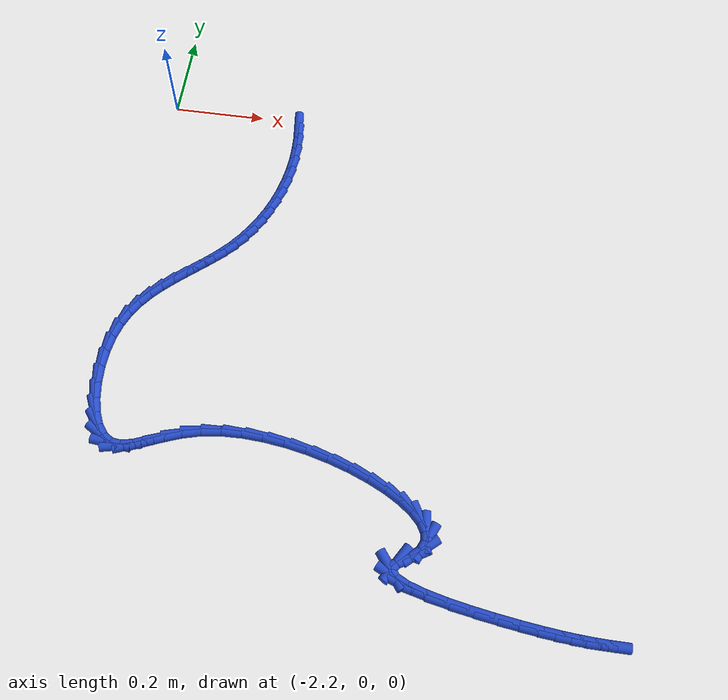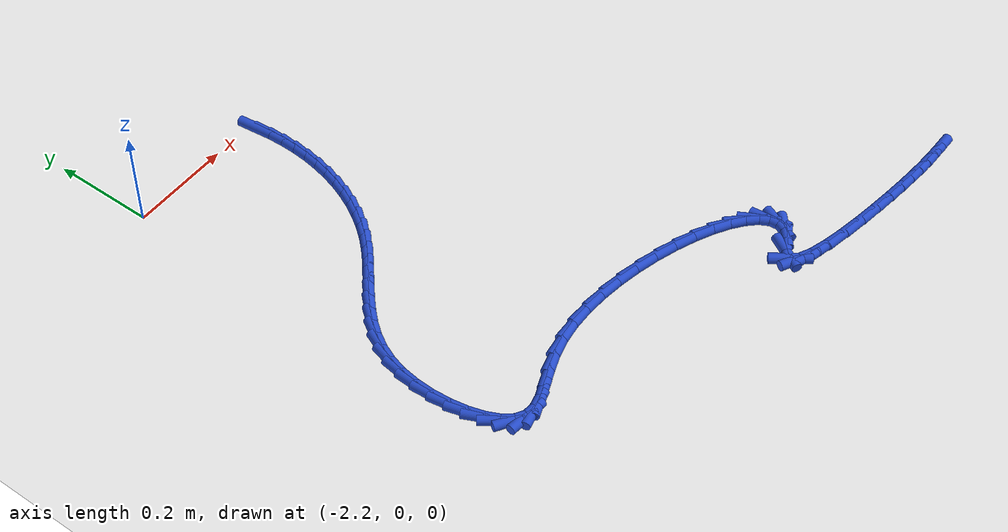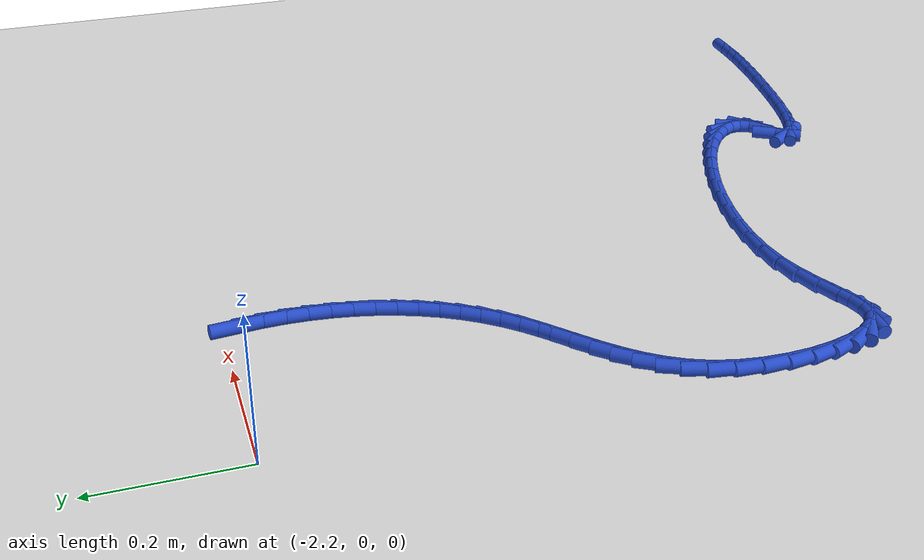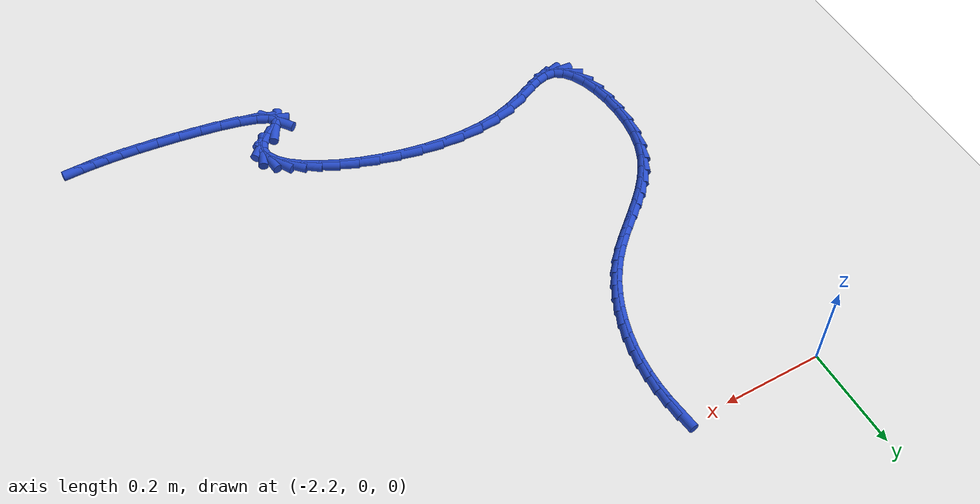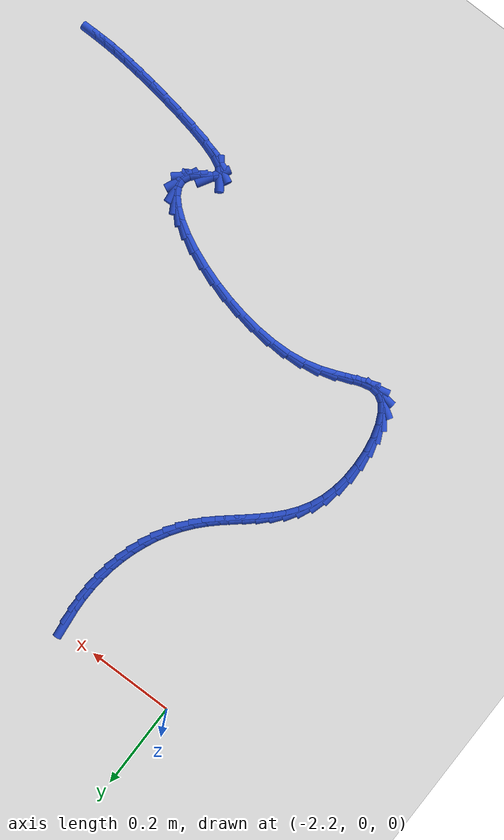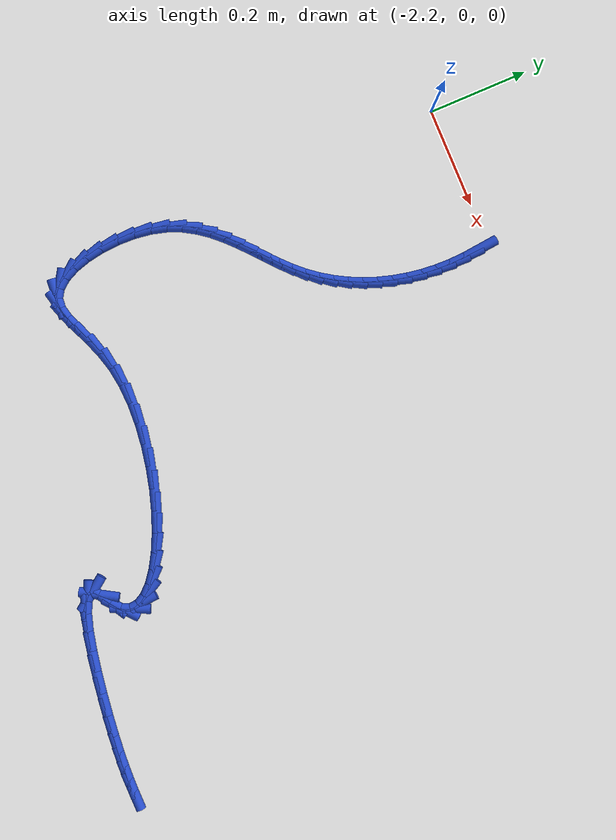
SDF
<sdf version="1.6">
 <world name="default">
  <model name="ground_plane">
   <static>1</static>
   <link name="link">
    <collision name="collision">
     <geometry><plane><normal>0 0 1</normal><size>100 100</size></plane></geometry>
     <surface><friction><ode><mu>100</mu><mu2>50</mu2></ode></friction></surface>
    </collision>
    <visual name="visual">
     <cast_shadows>0</cast_shadows>
     <geometry><plane><normal>0 0 1</normal><size>100 100</size></plane></geometry>
     <material>
      <script><uri>file://media/materials/scripts/gazebo.material</uri><name>Gazebo/WhiteGlow</name></script>
     </material>
    </visual>
   </link>
  </model>
  <model name="line">
   <link name="link_135">
    <pose>-1.9121766928476438 -0.02243736387028973 0.01 0 1.57 -1.4677591055402124</pose>
    <collision name="collision">
     <geometry><cylinder><radius>0.01</radius><length>0.08</length></cylinder></geometry>
    </collision>
    <visual name="visual">
     <material>
      <script><name>Gazebo/Blue</name><uri>file://media/materials/scripts/gazebo.material</uri></script>
     </material>
     <geometry><cylinder><radius>0.01</radius><length>0.08</length></cylinder></geometry>
    </visual>
   </link>
   <link name="link_136">
    <pose>-1.908968319430441 -0.05346509593135948 0.01 0 1.57 -1.5336050951854225</pose>
    <collision name="collision">
     <geometry><cylinder><radius>0.01</radius><length>0.08</length></cylinder></geometry>
    </collision>
    <visual name="visual">
     <material>
      <script><name>Gazebo/Blue</name><uri>file://media/materials/scripts/gazebo.material</uri></script>
     </material>
     <geometry><cylinder><radius>0.01</radius><length>0.08</length></cylinder></geometry>
    </visual>
   </link>
   <link name="link_137">
    <pose>-1.9078209519683493 -0.08430135371265923 0.01 0 1.57 1.5419096473632903</pose>
    <collision name="collision">
     <geometry><cylinder><radius>0.01</radius><length>0.08</length></cylinder></geometry>
    </collision>
    <visual name="visual">
     <material>
      <script><name>Gazebo/Blue</name><uri>file://media/materials/scripts/gazebo.material</uri></script>
     </material>
     <geometry><cylinder><radius>0.01</radius><length>0.08</length></cylinder></geometry>
    </visual>
   </link>
   <link name="link_138">
    <pose>-1.9087029506675008 -0.11482591997579036 0.01 0 1.57 1.4753915720247472</pose>
    <collision name="collision">
     <geometry><cylinder><radius>0.01</radius><length>0.08</length></cylinder></geometry>
    </collision>
    <visual name="visual">
     <material>
      <script><name>Gazebo/Blue</name><uri>file://media/materials/scripts/gazebo.material</uri></script>
     </material>
     <geometry><cylinder><radius>0.01</radius><length>0.08</length></cylinder></geometry>
    </visual>
   </link>
   <link name="link_139">
    <pose>-1.9115826757340275 -0.14491857748235043 0.01 0 1.57 1.4082049738448952</pose>
    <collision name="collision">
     <geometry><cylinder><radius>0.01</radius><length>0.08</length></cylinder></geometry>
    </collision>
    <visual name="visual">
     <material>
      <script><name>Gazebo/Blue</name><uri>file://media/materials/scripts/gazebo.material</uri></script>
     </material>
     <geometry><cylinder><radius>0.01</radius><length>0.08</length></cylinder></geometry>
    </visual>
   </link>
   <link name="link_140">
    <pose>-1.916428487374062 -0.1744591089939399 0.01 0 1.57 1.3401079919401704</pose>
    <collision name="collision">
     <geometry><cylinder><radius>0.01</radius><length>0.08</length></cylinder></geometry>
    </collision>
    <visual name="visual">
     <material>
      <script><name>Gazebo/Blue</name><uri>file://media/materials/scripts/gazebo.material</uri></script>
     </material>
     <geometry><cylinder><radius>0.01</radius><length>0.08</length></cylinder></geometry>
    </visual>
   </link>
   <link name="link_141">
    <pose>-1.9232087457937372 -0.20332729727215915 0.01 0 1.57 1.2708530210110442</pose>
    <collision name="collision">
     <geometry><cylinder><radius>0.01</radius><length>0.08</length></cylinder></geometry>
    </collision>
    <visual name="visual">
     <material>
      <script><name>Gazebo/Blue</name><uri>file://media/materials/scripts/gazebo.material</uri></script>
     </material>
     <geometry><cylinder><radius>0.01</radius><length>0.08</length></cylinder></geometry>
    </visual>
   </link>
   <link name="link_142">
    <pose>-1.9318918111991847 -0.23140292507860588 0.01 0 1.57 1.200196012994021</pose>
    <collision name="collision">
     <geometry><cylinder><radius>0.01</radius><length>0.08</length></cylinder></geometry>
    </collision>
    <visual name="visual">
     <material>
      <script><name>Gazebo/Blue</name><uri>file://media/materials/scripts/gazebo.material</uri></script>
     </material>
     <geometry><cylinder><radius>0.01</radius><length>0.08</length></cylinder></geometry>
    </visual>
   </link>
   <link name="link_143">
    <pose>-1.942446043796537 -0.2585657751748812 0.01 0 1.57 1.127907732350602</pose>
    <collision name="collision">
     <geometry><cylinder><radius>0.01</radius><length>0.08</length></cylinder></geometry>
    </collision>
    <visual name="visual">
     <material>
      <script><name>Gazebo/Blue</name><uri>file://media/materials/scripts/gazebo.material</uri></script>
     </material>
     <geometry><cylinder><radius>0.01</radius><length>0.08</length></cylinder></geometry>
    </visual>
   </link>
   <link name="link_144">
    <pose>-1.9548398037919263 -0.28469563032258305 0.01 0 1.57 1.0537872842390406</pose>
    <collision name="collision">
     <geometry><cylinder><radius>0.01</radius><length>0.08</length></cylinder></geometry>
    </collision>
    <visual name="visual">
     <material>
      <script><name>Gazebo/Blue</name><uri>file://media/materials/scripts/gazebo.material</uri></script>
     </material>
     <geometry><cylinder><radius>0.01</radius><length>0.08</length></cylinder></geometry>
    </visual>
   </link>
   <link name="link_145">
    <pose>-1.9690414513914853 -0.3096722732833125 0.01 0 1.57 0.9776779967423525</pose>
    <collision name="collision">
     <geometry><cylinder><radius>0.01</radius><length>0.08</length></cylinder></geometry>
    </collision>
    <visual name="visual">
     <material>
      <script><name>Gazebo/Blue</name><uri>file://media/materials/scripts/gazebo.material</uri></script>
     </material>
     <geometry><cylinder><radius>0.01</radius><length>0.08</length></cylinder></geometry>
    </visual>
   </link>
   <link name="link_146">
    <pose>-1.9850193468013462 -0.33337548681866735 0.01 0 1.57 0.8994853082831057</pose>
    <collision name="collision">
     <geometry><cylinder><radius>0.01</radius><length>0.08</length></cylinder></geometry>
    </collision>
    <visual name="visual">
     <material>
      <script><name>Gazebo/Blue</name><uri>file://media/materials/scripts/gazebo.material</uri></script>
     </material>
     <geometry><cylinder><radius>0.01</radius><length>0.08</length></cylinder></geometry>
    </visual>
   </link>
   <link name="link_147">
    <pose>-2.002741850227641 -0.3556850536902486 0.01 0 1.57 0.8207061070799493</pose>
    <collision name="collision">
     <geometry><cylinder><radius>0.01</radius><length>0.08</length></cylinder></geometry>
    </collision>
    <visual name="visual">
     <material>
      <script><name>Gazebo/Blue</name><uri>file://media/materials/scripts/gazebo.material</uri></script>
     </material>
     <geometry><cylinder><radius>0.01</radius><length>0.08</length></cylinder></geometry>
    </visual>
   </link>
   <link name="link_148">
    <pose>-2.022149826203974 -0.3765143144184763 0.01 0 1.57 0.7577830455100565</pose>
    <collision name="collision">
     <geometry><cylinder><radius>0.01</radius><length>0.08</length></cylinder></geometry>
    </collision>
    <visual name="visual">
     <material>
      <script><name>Gazebo/Blue</name><uri>file://media/materials/scripts/gazebo.material</uri></script>
     </material>
     <geometry><cylinder><radius>0.01</radius><length>0.08</length></cylinder></geometry>
    </visual>
   </link>
   <link name="link_149">
    <pose>-2.042888194766551 -0.3961378021462796 0.01 0 1.57 0.7206810507390391</pose>
    <collision name="collision">
     <geometry><cylinder><radius>0.01</radius><length>0.08</length></cylinder></geometry>
    </collision>
    <visual name="visual">
     <material>
      <script><name>Gazebo/Blue</name><uri>file://media/materials/scripts/gazebo.material</uri></script>
     </material>
     <geometry><cylinder><radius>0.01</radius><length>0.08</length></cylinder></geometry>
    </visual>
   </link>
   <link name="link_150">
    <pose>-2.06442162352474 -0.41505004345229685 0.01 0 1.57 0.7091812823771667</pose>
    <collision name="collision">
     <geometry><cylinder><radius>0.01</radius><length>0.08</length></cylinder></geometry>
    </collision>
    <visual name="visual">
     <material>
      <script><name>Gazebo/Blue</name><uri>file://media/materials/scripts/gazebo.material</uri></script>
     </material>
     <geometry><cylinder><radius>0.01</radius><length>0.08</length></cylinder></geometry>
    </visual>
   </link>
   <link name="link_151">
    <pose>-2.0862122211930263 -0.4337486879803442 0.01 0 1.57 0.7230681073417091</pose>
    <collision name="collision">
     <geometry><cylinder><radius>0.01</radius><length>0.08</length></cylinder></geometry>
    </collision>
    <visual name="visual">
     <material>
      <script><name>Gazebo/Blue</name><uri>file://media/materials/scripts/gazebo.material</uri></script>
     </material>
     <geometry><cylinder><radius>0.01</radius><length>0.08</length></cylinder></geometry>
    </visual>
   </link>
   <link name="link_152">
    <pose>-2.107722096485896 -0.45273138537423846 0.01 0 1.57 0.7624916139472809</pose>
    <collision name="collision">
     <geometry><cylinder><radius>0.01</radius><length>0.08</length></cylinder></geometry>
    </collision>
    <visual name="visual">
     <material>
      <script><name>Gazebo/Blue</name><uri>file://media/materials/scripts/gazebo.material</uri></script>
     </material>
     <geometry><cylinder><radius>0.01</radius><length>0.08</length></cylinder></geometry>
    </visual>
   </link>
   <link name="link_153">
    <pose>-2.128413358117833 -0.472495785277794 0.01 0 1.57 0.8276972984747621</pose>
    <collision name="collision">
     <geometry><cylinder><radius>0.01</radius><length>0.08</length></cylinder></geometry>
    </collision>
    <visual name="visual">
     <material>
      <script><name>Gazebo/Blue</name><uri>file://media/materials/scripts/gazebo.material</uri></script>
     </material>
     <geometry><cylinder><radius>0.01</radius><length>0.08</length></cylinder></geometry>
    </visual>
   </link>
   <link name="link_154">
    <pose>-2.1477481148033215 -0.49353953733482775 0.01 0 1.57 0.9182485066810369</pose>
    <collision name="collision">
     <geometry><cylinder><radius>0.01</radius><length>0.08</length></cylinder></geometry>
    </collision>
    <visual name="visual">
     <material>
      <script><name>Gazebo/Blue</name><uri>file://media/materials/scripts/gazebo.material</uri></script>
     </material>
     <geometry><cylinder><radius>0.01</radius><length>0.08</length></cylinder></geometry>
    </visual>
   </link>
   <link name="link_155">
    <pose>-2.1651884752568478 -0.5163602911891544 0.01 0 1.57 1.0318187575510687</pose>
    <collision name="collision">
     <geometry><cylinder><radius>0.01</radius><length>0.08</length></cylinder></geometry>
    </collision>
    <visual name="visual">
     <material>
      <script><name>Gazebo/Blue</name><uri>file://media/materials/scripts/gazebo.material</uri></script>
     </material>
     <geometry><cylinder><radius>0.01</radius><length>0.08</length></cylinder></geometry>
    </visual>
   </link>
   <link name="link_156">
    <pose>-2.1801965481928964 -0.5414556964845908 0.01 0 1.57 1.1630404686378453</pose>
    <collision name="collision">
     <geometry><cylinder><radius>0.01</radius><length>0.08</length></cylinder></geometry>
    </collision>
    <visual name="visual">
     <material>
      <script><name>Gazebo/Blue</name><uri>file://media/materials/scripts/gazebo.material</uri></script>
     </material>
     <geometry><cylinder><radius>0.01</radius><length>0.08</length></cylinder></geometry>
    </visual>
   </link>
   <link name="link_157">
    <pose>-2.192234442325952 -0.5693234028649515 0.01 0 1.57 1.302886956119486</pose>
    <collision name="collision">
     <geometry><cylinder><radius>0.01</radius><length>0.08</length></cylinder></geometry>
    </collision>
    <visual name="visual">
     <material>
      <script><name>Gazebo/Blue</name><uri>file://media/materials/scripts/gazebo.material</uri></script>
     </material>
     <geometry><cylinder><radius>0.01</radius><length>0.08</length></cylinder></geometry>
    </visual>
   </link>
   <link name="link_158">
    <pose>-2.2007739680605405 -0.6004318033529518 0.01 0 1.57 1.4298449578536887</pose>
    <collision name="collision">
     <geometry><cylinder><radius>0.01</radius><length>0.08</length></cylinder></geometry>
    </collision>
    <visual name="visual">
     <material>
      <script><name>Gazebo/Blue</name><uri>file://media/materials/scripts/gazebo.material</uri></script>
     </material>
     <geometry><cylinder><radius>0.01</radius><length>0.08</length></cylinder></geometry>
    </visual>
   </link>
   <link name="link_159">
    <pose>-2.205586233516081 -0.6343467224698516 0.01 0 1.57 1.5366091471734635</pose>
    <collision name="collision">
     <geometry><cylinder><radius>0.01</radius><length>0.08</length></cylinder></geometry>
    </collision>
    <visual name="visual">
     <material>
      <script><name>Gazebo/Blue</name><uri>file://media/materials/scripts/gazebo.material</uri></script>
     </material>
     <geometry><cylinder><radius>0.01</radius><length>0.08</length></cylinder></geometry>
    </visual>
   </link>
   <link name="link_160">
    <pose>-2.2067912878967055 -0.6695817106424367 0.01 0 1.57 -1.5062629188563919</pose>
    <collision name="collision">
     <geometry><cylinder><radius>0.01</radius><length>0.08</length></cylinder></geometry>
    </collision>
    <visual name="visual">
     <material>
      <script><name>Gazebo/Blue</name><uri>file://media/materials/scripts/gazebo.material</uri></script>
     </material>
     <geometry><cylinder><radius>0.01</radius><length>0.08</length></cylinder></geometry>
    </visual>
   </link>
   <link name="link_161">
    <pose>-2.204528884129633 -0.7045908993345703 0.01 0 1.57 -1.4041690615488103</pose>
    <collision name="collision">
     <geometry><cylinder><radius>0.01</radius><length>0.08</length></cylinder></geometry>
    </collision>
    <visual name="visual">
     <material>
      <script><name>Gazebo/Blue</name><uri>file://media/materials/scripts/gazebo.material</uri></script>
     </material>
     <geometry><cylinder><radius>0.01</radius><length>0.08</length></cylinder></geometry>
    </visual>
   </link>
   <link name="link_162">
    <pose>-2.1989387751420852 -0.7378284200101126 0.01 0 1.57 -1.2854197421155935</pose>
    <collision name="collision">
     <geometry><cylinder><radius>0.01</radius><length>0.08</length></cylinder></geometry>
    </collision>
    <visual name="visual">
     <material>
      <script><name>Gazebo/Blue</name><uri>file://media/materials/scripts/gazebo.material</uri></script>
     </material>
     <geometry><cylinder><radius>0.01</radius><length>0.08</length></cylinder></geometry>
    </visual>
   </link>
   <link name="link_163">
    <pose>-2.1901607138612835 -0.7677484041329281 0.01 0 1.57 -1.129813078426051</pose>
    <collision name="collision">
     <geometry><cylinder><radius>0.01</radius><length>0.08</length></cylinder></geometry>
    </collision>
    <visual name="visual">
     <material>
      <script><name>Gazebo/Blue</name><uri>file://media/materials/scripts/gazebo.material</uri></script>
     </material>
     <geometry><cylinder><radius>0.01</radius><length>0.08</length></cylinder></geometry>
    </visual>
   </link>
   <link name="link_164">
    <pose>-2.17833445321445 -0.7928049831668773 0.01 0 1.57 -0.9020726214211754</pose>
    <collision name="collision">
     <geometry><cylinder><radius>0.01</radius><length>0.08</length></cylinder></geometry>
    </collision>
    <visual name="visual">
     <material>
      <script><name>Gazebo/Blue</name><uri>file://media/materials/scripts/gazebo.material</uri></script>
     </material>
     <geometry><cylinder><radius>0.01</radius><length>0.08</length></cylinder></geometry>
    </visual>
   </link>
   <link name="link_165">
    <pose>-2.1635997461288046 -0.8114522885758237 0.01 0 1.57 -0.5483680466821972</pose>
    <collision name="collision">
     <geometry><cylinder><radius>0.01</radius><length>0.08</length></cylinder></geometry>
    </collision>
    <visual name="visual">
     <material>
      <script><name>Gazebo/Blue</name><uri>file://media/materials/scripts/gazebo.material</uri></script>
     </material>
     <geometry><cylinder><radius>0.01</radius><length>0.08</length></cylinder></geometry>
    </visual>
   </link>
   <link name="link_166">
    <pose>-2.1460963455315696 -0.8221444518236286 0.01 0 1.57 -0.09101637934331193</pose>
    <collision name="collision">
     <geometry><cylinder><radius>0.01</radius><length>0.08</length></cylinder></geometry>
    </collision>
    <visual name="visual">
     <material>
      <script><name>Gazebo/Blue</name><uri>file://media/materials/scripts/gazebo.material</uri></script>
     </material>
     <geometry><cylinder><radius>0.01</radius><length>0.08</length></cylinder></geometry>
    </visual>
   </link>
   <link name="link_167">
    <pose>-2.125913717450045 -0.8239864908408052 0.01 0 1.57 0.2255616234494556</pose>
    <collision name="collision">
     <geometry><cylinder><radius>0.01</radius><length>0.08</length></cylinder></geometry>
    </collision>
    <visual name="visual">
     <material>
      <script><name>Gazebo/Blue</name><uri>file://media/materials/scripts/gazebo.material</uri></script>
     </material>
     <geometry><cylinder><radius>0.01</radius><length>0.08</length></cylinder></geometry>
    </visual>
   </link>
   <link name="link_168">
    <pose>-2.102938065026945 -0.8187143485295779 0.01 0 1.57 0.36754950134307457</pose>
    <collision name="collision">
     <geometry><cylinder><radius>0.01</radius><length>0.08</length></cylinder></geometry>
    </collision>
    <visual name="visual">
     <material>
      <script><name>Gazebo/Blue</name><uri>file://media/materials/scripts/gazebo.material</uri></script>
     </material>
     <geometry><cylinder><radius>0.01</radius><length>0.08</length></cylinder></geometry>
    </visual>
   </link>
   <link name="link_169">
    <pose>-2.077004241313362 -0.8087286156378631 0.01 0 1.57 0.40039612738732877</pose>
    <collision name="collision">
     <geometry><cylinder><radius>0.01</radius><length>0.08</length></cylinder></geometry>
    </collision>
    <visual name="visual">
     <material>
      <script><name>Gazebo/Blue</name><uri>file://media/materials/scripts/gazebo.material</uri></script>
     </material>
     <geometry><cylinder><radius>0.01</radius><length>0.08</length></cylinder></geometry>
    </visual>
   </link>
   <link name="link_170">
    <pose>-2.0479470993582325 -0.7964298829414652 0.01 0 1.57 0.3609789136411352</pose>
    <collision name="collision">
     <geometry><cylinder><radius>0.01</radius><length>0.08</length></cylinder></geometry>
    </collision>
    <visual name="visual">
     <material>
      <script><name>Gazebo/Blue</name><uri>file://media/materials/scripts/gazebo.material</uri></script>
     </material>
     <geometry><cylinder><radius>0.01</radius><length>0.08</length></cylinder></geometry>
    </visual>
   </link>
   <link name="link_171">
    <pose>-2.0156014922104926 -0.7842187412161888 0.01 0 1.57 0.2652521878570287</pose>
    <collision name="collision">
     <geometry><cylinder><radius>0.01</radius><length>0.08</length></cylinder></geometry>
    </collision>
    <visual name="visual">
     <material>
      <script><name>Gazebo/Blue</name><uri>file://media/materials/scripts/gazebo.material</uri></script>
     </material>
     <geometry><cylinder><radius>0.01</radius><length>0.08</length></cylinder></geometry>
    </visual>
   </link>
   <link name="link_172">
    <pose>-1.979802975509078 -0.7744939547991696 0.01 0 1.57 0.14090668950221252</pose>
    <collision name="collision">
     <geometry><cylinder><radius>0.01</radius><length>0.08</length></cylinder></geometry>
    </collision>
    <visual name="visual">
     <material>
      <script><name>Gazebo/Blue</name><uri>file://media/materials/scripts/gazebo.material</uri></script>
     </material>
     <geometry><cylinder><radius>0.01</radius><length>0.08</length></cylinder></geometry>
    </visual>
   </link>
   <link name="link_173">
    <pose>-1.9406611756329086 -0.7689418193083054 0.01 0 1.57 0.035575887769309845</pose>
    <collision name="collision">
     <geometry><cylinder><radius>0.01</radius><length>0.08</length></cylinder></geometry>
    </collision>
    <visual name="visual">
     <material>
      <script><name>Gazebo/Blue</name><uri>file://media/materials/scripts/gazebo.material</uri></script>
     </material>
     <geometry><cylinder><radius>0.01</radius><length>0.08</length></cylinder></geometry>
    </visual>
   </link>
   <link name="link_174">
    <pose>-1.8989744758482454 -0.7674581519710223 0.01 0 1.57 -0.050821212110924864</pose>
    <collision name="collision">
     <geometry><cylinder><radius>0.01</radius><length>0.08</length></cylinder></geometry>
    </collision>
    <visual name="visual">
     <material>
      <script><name>Gazebo/Blue</name><uri>file://media/materials/scripts/gazebo.material</uri></script>
     </material>
     <geometry><cylinder><radius>0.01</radius><length>0.08</length></cylinder></geometry>
    </visual>
   </link>
   <link name="link_175">
    <pose>-1.8556477393738573 -0.7696619668967349 0.01 0 1.57 -0.1244124809104852</pose>
    <collision name="collision">
     <geometry><cylinder><radius>0.01</radius><length>0.08</length></cylinder></geometry>
    </collision>
    <visual name="visual">
     <material>
      <script><name>Gazebo/Blue</name><uri>file://media/materials/scripts/gazebo.material</uri></script>
     </material>
     <geometry><cylinder><radius>0.01</radius><length>0.08</length></cylinder></geometry>
    </visual>
   </link>
   <link name="link_176">
    <pose>-1.811585829428505 -0.7751722781948582 0.01 0 1.57 -0.18987865698389222</pose>
    <collision name="collision">
     <geometry><cylinder><radius>0.01</radius><length>0.08</length></cylinder></geometry>
    </collision>
    <visual name="visual">
     <material>
      <script><name>Gazebo/Blue</name><uri>file://media/materials/scripts/gazebo.material</uri></script>
     </material>
     <geometry><cylinder><radius>0.01</radius><length>0.08</length></cylinder></geometry>
    </visual>
   </link>
   <link name="link_177">
    <pose>-1.7676936092309572 -0.7836080999748065 0.01 0 1.57 -0.2510346225909384</pose>
    <collision name="collision">
     <geometry><cylinder><radius>0.01</radius><length>0.08</length></cylinder></geometry>
    </collision>
    <visual name="visual">
     <material>
      <script><name>Gazebo/Blue</name><uri>file://media/materials/scripts/gazebo.material</uri></script>
     </material>
     <geometry><cylinder><radius>0.01</radius><length>0.08</length></cylinder></geometry>
    </visual>
   </link>
   <link name="link_178">
    <pose>-1.7248759419999753 -0.7945884463459949 0.01 0 1.57 -0.31138228412036406</pose>
    <collision name="collision">
     <geometry><cylinder><radius>0.01</radius><length>0.08</length></cylinder></geometry>
    </collision>
    <visual name="visual">
     <material>
      <script><name>Gazebo/Blue</name><uri>file://media/materials/scripts/gazebo.material</uri></script>
     </material>
     <geometry><cylinder><radius>0.01</radius><length>0.08</length></cylinder></geometry>
    </visual>
   </link>
   <link name="link_179">
    <pose>-1.6840376909543269 -0.8077323314178373 0.01 0 1.57 -0.3746975999349758</pose>
    <collision name="collision">
     <geometry><cylinder><radius>0.01</radius><length>0.08</length></cylinder></geometry>
    </collision>
    <visual name="visual">
     <material>
      <script><name>Gazebo/Blue</name><uri>file://media/materials/scripts/gazebo.material</uri></script>
     </material>
     <geometry><cylinder><radius>0.01</radius><length>0.08</length></cylinder></geometry>
    </visual>
   </link>
   <link name="link_180">
    <pose>-1.646083719312774 -0.8226587692997493 0.01 0 1.57 -0.445826898630927</pose>
    <collision name="collision">
     <geometry><cylinder><radius>0.01</radius><length>0.08</length></cylinder></geometry>
    </collision>
    <visual name="visual">
     <material>
      <script><name>Gazebo/Blue</name><uri>file://media/materials/scripts/gazebo.material</uri></script>
     </material>
     <geometry><cylinder><radius>0.01</radius><length>0.08</length></cylinder></geometry>
    </visual>
   </link>
   <link name="link_181">
    <pose>-1.6119188902940849 -0.8389867741011449 0.01 0 1.57 -0.5320468702425095</pose>
    <collision name="collision">
     <geometry><cylinder><radius>0.01</radius><length>0.08</length></cylinder></geometry>
    </collision>
    <visual name="visual">
     <material>
      <script><name>Gazebo/Blue</name><uri>file://media/materials/scripts/gazebo.material</uri></script>
     </material>
     <geometry><cylinder><radius>0.01</radius><length>0.08</length></cylinder></geometry>
    </visual>
   </link>
   <link name="link_182">
    <pose>-1.582448067117022 -0.8563353599314387 0.01 0 1.57 -0.6457550775855215</pose>
    <collision name="collision">
     <geometry><cylinder><radius>0.01</radius><length>0.08</length></cylinder></geometry>
    </collision>
    <visual name="visual">
     <material>
      <script><name>Gazebo/Blue</name><uri>file://media/materials/scripts/gazebo.material</uri></script>
     </material>
     <geometry><cylinder><radius>0.01</radius><length>0.08</length></cylinder></geometry>
    </visual>
   </link>
   <link name="link_183">
    <pose>-1.55857611300035 -0.874323540900046 0.01 0 1.57 -0.810061646020535</pose>
    <collision name="collision">
     <geometry><cylinder><radius>0.01</radius><length>0.08</length></cylinder></geometry>
    </collision>
    <visual name="visual">
     <material>
      <script><name>Gazebo/Blue</name><uri>file://media/materials/scripts/gazebo.material</uri></script>
     </material>
     <geometry><cylinder><radius>0.01</radius><length>0.08</length></cylinder></geometry>
    </visual>
   </link>
   <link name="link_184">
    <pose>-1.541207891162835 -0.8925703311163808 0.01 0 1.57 -1.0683260100211855</pose>
    <collision name="collision">
     <geometry><cylinder><radius>0.01</radius><length>0.08</length></cylinder></geometry>
    </collision>
    <visual name="visual">
     <material>
      <script><name>Gazebo/Blue</name><uri>file://media/materials/scripts/gazebo.material</uri></script>
     </material>
     <geometry><cylinder><radius>0.01</radius><length>0.08</length></cylinder></geometry>
    </visual>
   </link>
   <link name="link_185">
    <pose>-1.5312482648232408 -0.9106947446898588 0.01 0 1.57 -1.477646172247505</pose>
    <collision name="collision">
     <geometry><cylinder><radius>0.01</radius><length>0.08</length></cylinder></geometry>
    </collision>
    <visual name="visual">
     <material>
      <script><name>Gazebo/Blue</name><uri>file://media/materials/scripts/gazebo.material</uri></script>
     </material>
     <geometry><cylinder><radius>0.01</radius><length>0.08</length></cylinder></geometry>
    </visual>
   </link>
   <link name="link_186">
    <pose>-1.5296020972003328 -0.9283157957298931 0.01 0 1.57 1.1459250390103068</pose>
    <collision name="collision">
     <geometry><cylinder><radius>0.01</radius><length>0.08</length></cylinder></geometry>
    </collision>
    <visual name="visual">
     <material>
      <script><name>Gazebo/Blue</name><uri>file://media/materials/scripts/gazebo.material</uri></script>
     </material>
     <geometry><cylinder><radius>0.01</radius><length>0.08</length></cylinder></geometry>
    </visual>
   </link>
   <link name="link_187">
    <pose>-1.5371742515128761 -0.9450524983458998 0.01 0 1.57 0.7184440676352714</pose>
    <collision name="collision">
     <geometry><cylinder><radius>0.01</radius><length>0.08</length></cylinder></geometry>
    </collision>
    <visual name="visual">
     <material>
      <script><name>Gazebo/Blue</name><uri>file://media/materials/scripts/gazebo.material</uri></script>
     </material>
     <geometry><cylinder><radius>0.01</radius><length>0.08</length></cylinder></geometry>
    </visual>
   </link>
   <link name="link_188">
    <pose>-1.5548695909796342 -0.9605238666472924 0.01 0 1.57 0.5361793929824847</pose>
    <collision name="collision">
     <geometry><cylinder><radius>0.01</radius><length>0.08</length></cylinder></geometry>
    </collision>
    <visual name="visual">
     <material>
      <script><name>Gazebo/Blue</name><uri>file://media/materials/scripts/gazebo.material</uri></script>
     </material>
     <geometry><cylinder><radius>0.01</radius><length>0.08</length></cylinder></geometry>
    </visual>
   </link>
   <link name="link_189">
    <pose>-1.5784540753638252 -0.9745389005722213 0.01 0 1.57 1.0360932947501298</pose>
    <collision name="collision">
     <geometry><cylinder><radius>0.01</radius><length>0.08</length></cylinder></geometry>
    </collision>
    <visual name="visual">
     <material>
      <script><name>Gazebo/Blue</name><uri>file://media/materials/scripts/gazebo.material</uri></script>
     </material>
     <geometry><cylinder><radius>0.01</radius><length>0.08</length></cylinder></geometry>
    </visual>
   </link>
   <link name="link_190">
    <pose>-1.586227979590786 -0.9876649060621464 0.01 0 1.57 -0.9343680447015529</pose>
    <collision name="collision">
     <geometry><cylinder><radius>0.01</radius><length>0.08</length></cylinder></geometry>
    </collision>
    <visual name="visual">
     <material>
      <script><name>Gazebo/Blue</name><uri>file://media/materials/scripts/gazebo.material</uri></script>
     </material>
     <geometry><cylinder><radius>0.01</radius><length>0.08</length></cylinder></geometry>
    </visual>
   </link>
   <link name="link_191">
    <pose>-1.5771471544947924 -0.9999527829944098 0.01 0 1.57 -0.46469482806672674</pose>
    <collision name="collision">
     <geometry><cylinder><radius>0.01</radius><length>0.08</length></cylinder></geometry>
    </collision>
    <visual name="visual">
     <material>
      <script><name>Gazebo/Blue</name><uri>file://media/materials/scripts/gazebo.material</uri></script>
     </material>
     <geometry><cylinder><radius>0.01</radius><length>0.08</length></cylinder></geometry>
    </visual>
   </link>
   <link name="link_192">
    <pose>-1.5544587775580392 -1.0113266866589377 0.01 0 1.57 -0.30443749983537727</pose>
    <collision name="collision">
     <geometry><cylinder><radius>0.01</radius><length>0.08</length></cylinder></geometry>
    </collision>
    <visual name="visual">
     <material>
      <script><name>Gazebo/Blue</name><uri>file://media/materials/scripts/gazebo.material</uri></script>
     </material>
     <geometry><cylinder><radius>0.01</radius><length>0.08</length></cylinder></geometry>
    </visual>
   </link>
   <link name="link_193">
    <pose>-1.5214100262627206 -1.021710772345658 0.01 0 1.57 -0.22798717924476447</pose>
    <collision name="collision">
     <geometry><cylinder><radius>0.01</radius><length>0.08</length></cylinder></geometry>
    </collision>
    <visual name="visual">
     <material>
      <script><name>Gazebo/Blue</name><uri>file://media/materials/scripts/gazebo.material</uri></script>
     </material>
     <geometry><cylinder><radius>0.01</radius><length>0.08</length></cylinder></geometry>
    </visual>
   </link>
   <link name="link_194">
    <pose>-1.4812480780910313 -1.031029195344499 0.01 0 1.57 -0.18362876031238673</pose>
    <collision name="collision">
     <geometry><cylinder><radius>0.01</radius><length>0.08</length></cylinder></geometry>
    </collision>
    <visual name="visual">
     <material>
      <script><name>Gazebo/Blue</name><uri>file://media/materials/scripts/gazebo.material</uri></script>
     </material>
     <geometry><cylinder><radius>0.01</radius><length>0.08</length></cylinder></geometry>
    </visual>
   </link>
   <link name="link_195">
    <pose>-1.4372201105251665 -1.0392061109453863 0.01 0 1.57 -0.1546359512586396</pose>
    <collision name="collision">
     <geometry><cylinder><radius>0.01</radius><length>0.08</length></cylinder></geometry>
    </collision>
    <visual name="visual">
     <material>
      <script><name>Gazebo/Blue</name><uri>file://media/materials/scripts/gazebo.material</uri></script>
     </material>
     <geometry><cylinder><radius>0.01</radius><length>0.08</length></cylinder></geometry>
    </visual>
   </link>
   <link name="link_196">
    <pose>-1.3925733010473185 -1.046165674438248 0.01 0 1.57 -0.1340267439568656</pose>
    <collision name="collision">
     <geometry><cylinder><radius>0.01</radius><length>0.08</length></cylinder></geometry>
    </collision>
    <visual name="visual">
     <material>
      <script><name>Gazebo/Blue</name><uri>file://media/materials/scripts/gazebo.material</uri></script>
     </material>
     <geometry><cylinder><radius>0.01</radius><length>0.08</length></cylinder></geometry>
    </visual>
   </link>
   <link name="link_197">
    <pose>-1.3505448150067927 -1.0518325881884025 0.01 0 1.57 -0.11617319841531182</pose>
    <collision name="collision">
     <geometry><cylinder><radius>0.01</radius><length>0.08</length></cylinder></geometry>
    </collision>
    <visual name="visual">
     <material>
      <script><name>Gazebo/Blue</name><uri>file://media/materials/scripts/gazebo.material</uri></script>
     </material>
     <geometry><cylinder><radius>0.01</radius><length>0.08</length></cylinder></geometry>
    </visual>
   </link>
   <link name="link_198">
    <pose>-1.3131209476964654 -1.0561999036565561 0.01 0 1.57 -0.09569005254377651</pose>
    <collision name="collision">
     <geometry><cylinder><radius>0.01</radius><length>0.08</length></cylinder></geometry>
    </collision>
    <visual name="visual">
     <material>
      <script><name>Gazebo/Blue</name><uri>file://media/materials/scripts/gazebo.material</uri></script>
     </material>
     <geometry><cylinder><radius>0.01</radius><length>0.08</length></cylinder></geometry>
    </visual>
   </link>
   <link name="link_199">
    <pose>-1.2798371325348772 -1.0593945904439657 0.01 0 1.57 -0.07228488765040991</pose>
    <collision name="collision">
     <geometry><cylinder><radius>0.01</radius><length>0.08</length></cylinder></geometry>
    </collision>
    <visual name="visual">
     <material>
      <script><name>Gazebo/Blue</name><uri>file://media/materials/scripts/gazebo.material</uri></script>
     </material>
     <geometry><cylinder><radius>0.01</radius><length>0.08</length></cylinder></geometry>
    </visual>
   </link>
   <link name="link_200">
    <pose>-1.2499441925396466 -1.0615591696181188 0.01 0 1.57 -0.04682572518180127</pose>
    <collision name="collision">
     <geometry><cylinder><radius>0.01</radius><length>0.08</length></cylinder></geometry>
    </collision>
    <visual name="visual">
     <material>
      <script><name>Gazebo/Blue</name><uri>file://media/materials/scripts/gazebo.material</uri></script>
     </material>
     <geometry><cylinder><radius>0.01</radius><length>0.08</length></cylinder></geometry>
    </visual>
   </link>
   <link name="link_201">
    <pose>-1.222692950728396 -1.062836162246502 0.01 0 1.57 -0.020973027915745894</pose>
    <collision name="collision">
     <geometry><cylinder><radius>0.01</radius><length>0.08</length></cylinder></geometry>
    </collision>
    <visual name="visual">
     <material>
      <script><name>Gazebo/Blue</name><uri>file://media/materials/scripts/gazebo.material</uri></script>
     </material>
     <geometry><cylinder><radius>0.01</radius><length>0.08</length></cylinder></geometry>
    </visual>
   </link>
   <link name="link_202">
    <pose>-1.1973342301187426 -1.0633680893966024 0.01 0 1.57 0.002916207428412442</pose>
    <collision name="collision">
     <geometry><cylinder><radius>0.01</radius><length>0.08</length></cylinder></geometry>
    </collision>
    <visual name="visual">
     <material>
      <script><name>Gazebo/Blue</name><uri>file://media/materials/scripts/gazebo.material</uri></script>
     </material>
     <geometry><cylinder><radius>0.01</radius><length>0.08</length></cylinder></geometry>
    </visual>
   </link>
  </model>
 </world>
</sdf>
